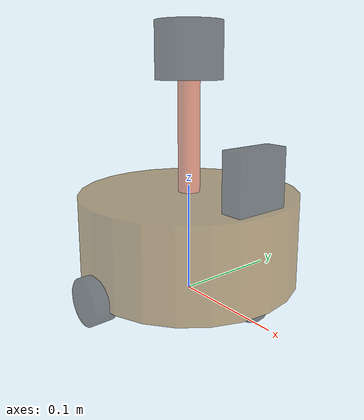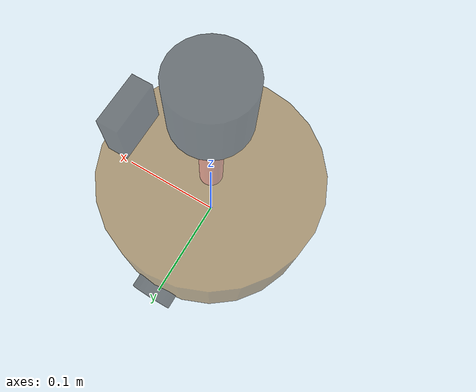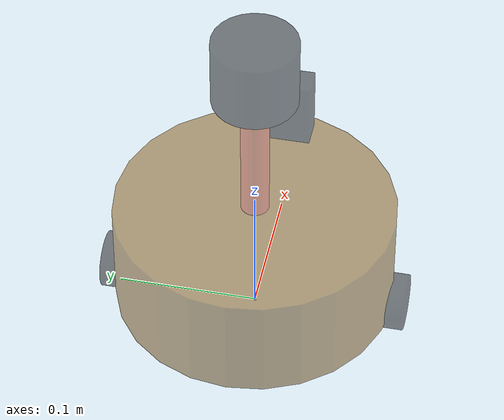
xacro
<robot xmlns:xacro="http://www.ros.org/wiki/xacro" name="mycar">
    <xacro:include filename="head.xacro"/>
    <xacro:include filename="car_base.xacro"/>
    <xacro:include filename="car_camera.xacro"/>
    <xacro:include filename="car_laser.xacro"/>
    <xacro:include filename="gazebo/move.xacro"/>
    <xacro:include filename="gazebo/laser.xacro"/>
    <xacro:include filename="gazebo/camera.xacro"/>
    <xacro:include filename="gazebo/kinect.xacro"/>

</robot>

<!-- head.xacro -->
<robot name="base"
    xmlns:xacro="http://wiki.ros.org/xacro">
    <!-- Macro for inertia matrix -->
    <xacro:macro name="sphere_inertial_matrix" params="m r">
        <inertial>
            <mass value="${m}" />
            <inertia ixx="${2*m*r*r/5}" ixy="0" ixz="0" iyy="${2*m*r*r/5}" iyz="0" izz="${2*m*r*r/5}" />
        </inertial>
    </xacro:macro>

    <xacro:macro name="cylinder_inertial_matrix" params="m r h">
        <inertial>
            <mass value="${m}" />
            <inertia ixx="${m*(3*r*r+h*h)/12}" ixy = "0" ixz = "0" iyy="${m*(3*r*r+h*h)/12}" iyz = "0" izz="${m*r*r/2}" />
        </inertial>
    </xacro:macro>

    <xacro:macro name="Box_inertial_matrix" params="m l w h">
        <inertial>
            <mass value="${m}" />
            <inertia ixx="${m*(h*h + l*l)/12}" ixy = "0" ixz = "0" iyy="${m*(w*w + l*l)/12}" iyz= "0" izz="${m*(w*w + h*h)/12}" />
        </inertial>
    </xacro:macro>
</robot>

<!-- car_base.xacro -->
<robot name="mycar"
    xmlns:xacro="http://wiki.ros.org/xacro">
    <xacro:property name="footprint_radius" value="0.001" />
    <xacro:property name="base_radius" value="0.1"/>
    <xacro:property name="base_length" value="0.08"/>
    <xacro:property name="base_mass" value="2"/>
    <xacro:property name="wheel_mass" value="0.05"/>
    <xacro:property name="small_wheel_mass" value="0.01"/>

    <xacro:property name="lidi" value="0.015"/>
    <xacro:property name="base_joint_z" value="${base_length / 2 + lidi}"/>
    <link name="base_footprint">
        <visual>
            <geometry>
                <sphere radius="${footprint_radius}"/>
            </geometry>
        </visual>
    </link>
    <link name="base_link">
        <visual>
            <geometry>
                <cylinder radius="${base_radius}" length="${base_length}" />
            </geometry>
            <origin xyz="0 0 0" rpy="0 0 0" />
            <material name="yellow">
                <color rgba="0.5 0.3 0.0 0.5" />
            </material>
        </visual>
        <collision>
            <geometry>
                <cylinder radius="${base_radius}" length="${base_length}" />
            </geometry>
            <origin xyz="0 0 0" rpy="0 0 0" />
        </collision>
        <xacro:cylinder_inertial_matrix m="${base_mass}" r="${base_radius}" h="${base_length}" />
    </link>
    <gazebo reference="base_link">
        <material>
        Gazebo/Yellow
        </material>
    </gazebo>

    <joint name="base_link2base_footprint" type="fixed">
        <parent link="base_footprint"/>
        <child link="base_link"/>
        <origin xyz="0 0 ${lidi+ base_length / 2}" />
    </joint>

    <xacro:property name="wheel_radius" value="0.02" />
    <xacro:property name="wheel_length" value="0.02" />
    <xacro:property name="PI" value="3.1415927" />
    <xacro:property name="wheel_joint_z" value="${-1* (base_length / 2 + lidi - wheel_radius)}" />
    <xacro:macro name="wheel_func" params="wheel_name flag">
        <link name="${wheel_name}_wheel">
            <visual>
                <geometry>
                    <cylinder radius="${wheel_radius}" length="${wheel_length}" />
                </geometry>
                <origin xyz="0 0 0" rpy="${PI /2} 0 0" />
                <material name="wheel_color">
                    <color rgba="0 0 0 0.5" />
                </material>
            </visual>
            <collision>
                <geometry>
                    <cylinder radius="${wheel_radius}" length="${wheel_length}" />
                </geometry>
                <origin xyz="0 0 0" rpy="${PI /2} 0 0" />
            </collision>
            <xacro:cylinder_inertial_matrix m="${wheel_mass}" r="${wheel_radius}" h="${wheel_length}" />
        </link>
        <gazebo reference="${wheel_name}_wheel">
            <material>
                Gazebo/Red
            </material>
        </gazebo>
        <joint name="${wheel_name}2link" type="continuous">
            <parent link="base_link" />
            <child link="${wheel_name}_wheel" />
            <origin xyz="0 ${0.1*flag} ${wheel_joint_z}" rpy="0 0 0" />
            <axis xyz="0 0 0.5" />
        </joint>
    </xacro:macro>

    <xacro:property name="small_wheel_radius" value="0.015"/>
    <xacro:property name="small_joint_z" value="${(0.5*base_length+lidi-small_wheel_radius)*-1}"/>

    <xacro:macro name="small_wheel_func" params="small_wheel_name flag">
        <link name="${small_wheel_name}_wheel">
            <visual>
                <geometry>
                    <sphere radius="${small_wheel_radius}" />
                </geometry>
                <origin xyz="0 0 0" rpy="0 0 0" />
                <material name="wheel_color">
                    <color rgba="0 0 0 0.5" />
                </material>
            </visual>
            <collision>
                <geometry>
                    <sphere radius="${small_wheel_radius}" />
                </geometry>
                <origin xyz="0 0 0" rpy="0 0 0" />
            </collision>
            <xacro:sphere_inertial_matrix m="${small_wheel_mass}" r="${small_wheel_radius}" />
        </link>
        <gazebo reference="${small_wheel_name}_wheel">
            <material>
                Gazebo/Red
            </material>
        </gazebo>
        <joint name="${small_wheel_name}2link" type="continuous">
            <parent link="base_link" />
            <child link="${small_wheel_name}_wheel" />
            <origin xyz="${0.08*flag} 0 ${small_joint_z}" rpy="0 0 0" />
            <axis xyz="0 0 0.5" />
        </joint>
    </xacro:macro>

    <xacro:wheel_func wheel_name="left" flag="1" />
    <xacro:wheel_func wheel_name="right" flag="-1" />

    <xacro:small_wheel_func small_wheel_name="front" flag="1" />
    <xacro:small_wheel_func small_wheel_name="back" flag="-1" />

</robot>

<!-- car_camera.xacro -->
<robot xmlns:xacro="http://www.ros.org/wiki/xacro" name="mycar">
    <xacro:property name="camera_length" value="0.02"/>
    <xacro:property name="camera_width" value="0.05"/>
    <xacro:property name="camera_height" value="0.05"/>
    <xacro:property name="camera_mass" value="0.01"/>
    <xacro:property name="joint_camera_x" value="0.08"/>
    <xacro:property name="joint_camera_y" value="0"/>
    <xacro:property name="joint_camera_z" value="${base_length * 0.5 + camera_height * 0.5}"/>

    <link name="camera">
        <visual>
            <geometry>
                <box size="${camera_length} ${camera_width} ${camera_height}"/>
            </geometry>
            <origin xyz="0.0 0.0 0.0" rpy="0.0 0.0 0.0"/>
            <material name="black">
                <color rgba="0.0 0.0 0.0 0.5"/>
            </material>
        </visual>
        <collision>
            <geometry>
                <box size="${camera_length} ${camera_width} ${camera_height}"/>
            </geometry>
            <origin xyz="0.0 0.0 0.0" rpy="0.0 0.0 0.0"/>
        </collision>
        <xacro:Box_inertial_matrix m="${camera_mass}" l="${camera_length}" w="${camera_width}" h="${camera_height}" />
    </link>
    <gazebo reference="camera">
        <material>
            Gazebo/Blue
        </material>
    </gazebo>

    <joint name="camera2base" type="fixed">
        <parent link="base_link"/>
        <child link="camera"/>
        <origin xyz="${joint_camera_x} ${joint_camera_y} ${joint_camera_z}" rpy="0.0 0.0 0.0"/>
    </joint>
</robot>

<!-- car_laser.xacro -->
<robot name="mycar"
    xmlns:xacro="http://www.ros.org/wiki/xacro">
    <xacro:property name="support_radius" value="0.01"/>
    <xacro:property name="support_length" value="0.1"/>
    <xacro:property name="support_mass" value="0.1"/>
    <xacro:property name="laser_radius" value="0.03"/>
    <xacro:property name="laser_length" value="0.05"/>
    <xacro:property name="laser_mass" value="0.05"/>

    <xacro:property name="joint_support_x" value="0"/>
    <xacro:property name="joint_support_y" value="0"/>
    <xacro:property name="joint_support_z" value="${0.04 + support_length /2}"/>

    <xacro:property name="laser_support_x" value="0"/>
    <xacro:property name="laser_support_y" value="0"/>
    <xacro:property name="laser_support_z" value="${support_length /2 + laser_length/2}"/>

    <link name="support">
        <visual>
            <geometry>
                <cylinder radius="${support_radius}" length="${support_length}"/>
            </geometry>
            <origin xyz="0.0 0.0 0.0" rpy="0.0 0.0 0.0"/>
            <material name="yellow">
                <color rgba="0.8 0.2 0.0 0.5"/>
            </material>
        </visual>
        <collision>
            <geometry>
                <cylinder radius="${support_radius}" length="${support_length}"/>
            </geometry>
            <origin xyz="0.0 0.0 0.0" rpy="0.0 0.0 0.0"/>
        </collision>
        <xacro:cylinder_inertial_matrix m="${support_mass}" r="${support_radius}" h="${support_length}" />
    </link>
    <gazebo reference="support">
        <material>
            Gazebo/Gray
        </material>
    </gazebo>

    <joint name="support2base" type="fixed">
        <parent link="base_link"/>
        <child link="support"/>
        <origin xyz="${joint_support_x} ${joint_support_y} ${joint_support_z} " />
    </joint>

    <link name="laser">
        <visual>
            <geometry>
                <cylinder radius="${laser_radius}" length="${laser_length}" />
            </geometry>
            <origin xyz="0.0 0.0 0.0" rpy="0.0 0.0 0.0" />
            <material name="black"/>
        </visual>
        <collision>
            <geometry>
                <cylinder radius="${laser_radius}" length="${laser_length}" />
            </geometry>
            <origin xyz="0.0 0.0 0.0" rpy="0.0 0.0 0.0" />
        </collision>
        <xacro:cylinder_inertial_matrix m="${laser_mass}" r="${laser_radius}" h="${laser_length}" />
    </link>
    <gazebo reference="laser">
        <material>
            Gazebo/Black
        </material>
    </gazebo>

    <joint name="laser2support" type="fixed">
        <parent link="support" />
        <child link="laser" />
        <origin xyz="${laser_support_x} ${laser_support_y} ${laser_support_z}" rpy="0 0 0" />
    </joint>

</robot>
